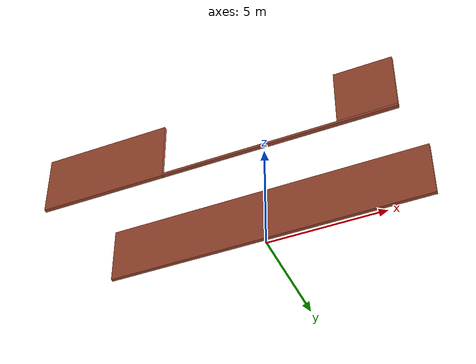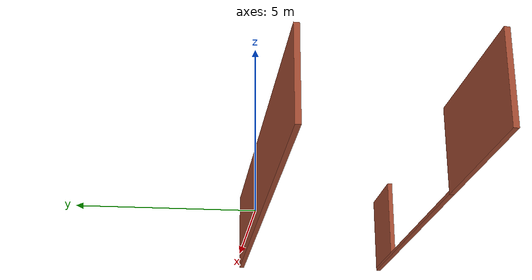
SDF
<?xml version='1.0'?>
<sdf version='1.6'>
  <model name='single_floor_wall'>
    <pose frame=''>-0.016241 -2.6623 0 0 -0 0</pose>
    <link name='Wall_0'>
      <collision name='Wall_0_Collision'>
        <geometry>
          <box>
            <size>13.75 0.15 2.5</size>
          </box>
        </geometry>
        <pose frame=''>0 0 1.25 0 -0 0</pose>
      </collision>
      <visual name='Wall_0_Visual'>
        <pose frame=''>0 0 1.25 0 -0 0</pose>
        <geometry>
          <box>
            <size>13.75 0.15 2.5</size>
          </box>
        </geometry>
        <material>
          <script>
            <uri>file://media/materials/scripts/gazebo.material</uri>
            <name>Gazebo/Bricks</name>
          </script>
          <ambient>1 1 1 1</ambient>
        </material>
        <meta>
          <layer>0</layer>
        </meta>
      </visual>
      <pose frame=''>0.136241 2.4223 0 0 -0 0</pose>
    </link>
    <link name='Wall_2'>
      <pose frame=''>-0.011241 -2.4223 0 0 -0 0</pose>
      <visual name='Wall_2_Visual_0'>
        <pose frame=''>-4.51118 0 1.25 0 -0 0</pose>
        <geometry>
          <box>
            <size>4.97764 0.15 2.5</size>
          </box>
        </geometry>
        <material>
          <script>
            <uri>file://media/materials/scripts/gazebo.material</uri>
            <name>Gazebo/Bricks</name>
          </script>
          <ambient>1 1 1 1</ambient>
        </material>
        <meta>
          <layer>0</layer>
        </meta>
      </visual>
      <collision name='Wall_2_Collision_0'>
        <geometry>
          <box>
            <size>4.97764 0.15 2.5</size>
          </box>
        </geometry>
        <pose frame=''>-4.51118 0 1.25 0 -0 0</pose>
      </collision>
      <visual name='Wall_2_Visual_1'>
        <pose frame=''>2.48882 0 0.05 0 -0 0</pose>
        <geometry>
          <box>
            <size>9.02236 0.15 0.1</size>
          </box>
        </geometry>
        <material>
          <script>
            <uri>file://media/materials/scripts/gazebo.material</uri>
            <name>Gazebo/Bricks</name>
          </script>
          <ambient>1 1 1 1</ambient>
        </material>
        <meta>
          <layer>0</layer>
        </meta>
      </visual>
      <collision name='Wall_2_Collision_1'>
        <geometry>
          <box>
            <size>9.02236 0.15 0.1</size>
          </box>
        </geometry>
        <pose frame=''>2.48882 0 0.05 0 -0 0</pose>
      </collision>
      <visual name='Wall_2_Visual_2'>
        <pose frame=''>5.88882 0 1.3 0 -0 0</pose>
        <geometry>
          <box>
            <size>2.22236 0.15 2.4</size>
          </box>
        </geometry>
        <material>
          <script>
            <uri>file://media/materials/scripts/gazebo.material</uri>
            <name>Gazebo/Bricks</name>
          </script>
          <ambient>1 1 1 1</ambient>
        </material>
        <meta>
          <layer>0</layer>
        </meta>
      </visual>
      <collision name='Wall_2_Collision_2'>
        <geometry>
          <box>
            <size>2.22236 0.15 2.4</size>
          </box>
        </geometry>
        <pose frame=''>5.88882 0 1.3 0 -0 0</pose>
      </collision>
    </link>
    <static>1</static>
  </model>
</sdf>
